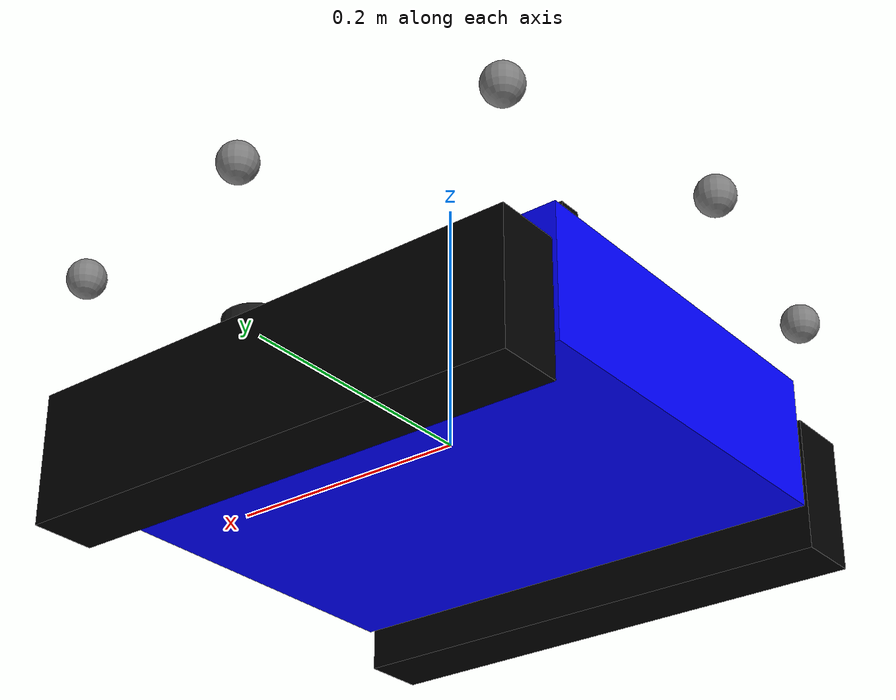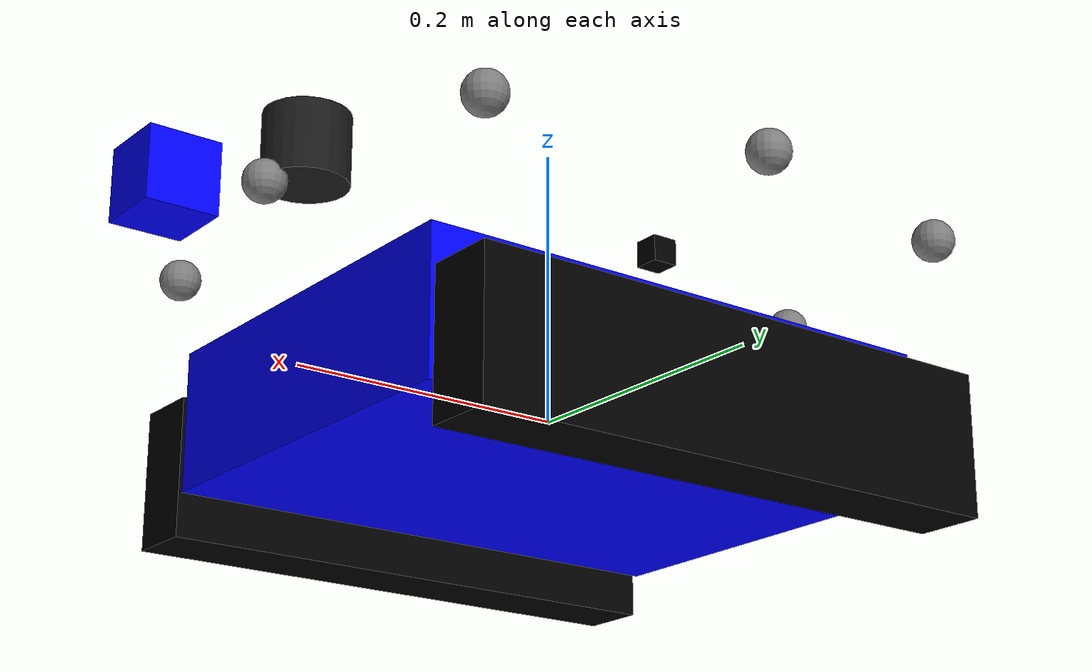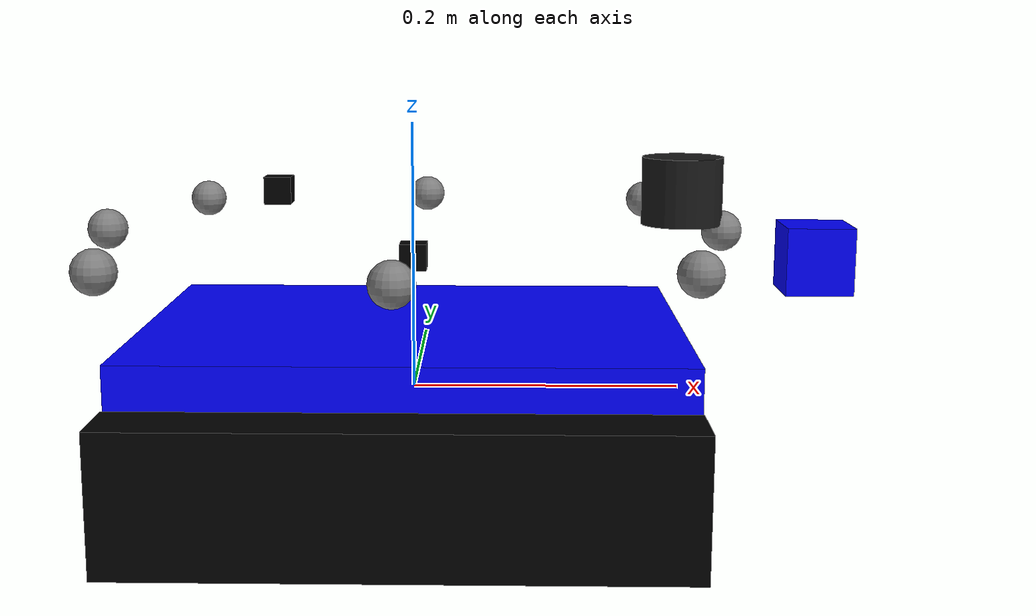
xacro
<?xml version="1.0"?>
<robot name="rover" xmlns:xacro="http://www.ros.org/wiki/xacro">

  <material name="grey"><color rgba="0.5 0.5 0.5 1.0"/></material>
  <material name="black"><color rgba="0.0 0.0 0.0 1.0"/></material>
  <material name="blue"><color rgba="0.0 0.0 1.0 1.0"/></material>
  <material name="lidar_mat"><color rgba="0.1 0.1 0.1 1.0"/></material>
  <material name="cam_mat"><color rgba="0.5 0.5 0.5 1.0"/></material>

  <link name="base_footprint"/>
  <joint name="base_joint" type="fixed">
    <parent link="base_footprint"/>
    <child link="base_link"/>
  </joint>

  <link name="base_link">
    <inertial>
      <mass value="5.0"/>
      <inertia ixx="0.1" ixy="0" ixz="0" iyy="0.1" iyz="0" izz="0.1"/>
    </inertial>
    <visual>
      <geometry><box size="0.4 0.3 0.1"/></geometry>
      <material name="blue"/>
    </visual>
    <collision>
      <geometry><box size="0.4 0.3 0.1"/></geometry>
    </collision>
  </link>

  <link name="left_track_vis">
    <visual><geometry><box size="0.4 0.05 0.1"/></geometry><material name="black"/></visual>
  </link>
  <joint name="lt_joint" type="fixed"><parent link="base_link"/><child link="left_track_vis"/><origin xyz="0 0.18 -0.03"/></joint>

  <link name="right_track_vis">
    <visual><geometry><box size="0.4 0.05 0.1"/></geometry><material name="black"/></visual>
  </link>
  <joint name="rt_joint" type="fixed"><parent link="base_link"/><child link="right_track_vis"/><origin xyz="0 -0.18 -0.03"/></joint>

  <link name="left_wheel"><collision><geometry><cylinder radius="0.05" length="0.03"/></geometry></collision><inertial><mass value="0.2"/><inertia ixx="0.01" ixy="0" ixz="0" iyy="0.01" iyz="0" izz="0.01"/></inertial></link>
  <joint name="left_wheel_joint" type="continuous"><parent link="base_link"/><child link="left_wheel"/><origin xyz="0 0.17 -0.05" rpy="1.5708 0 0"/><axis xyz="0 0 -1"/></joint>

  <link name="right_wheel"><collision><geometry><cylinder radius="0.05" length="0.03"/></geometry></collision><inertial><mass value="0.2"/><inertia ixx="0.01" ixy="0" ixz="0" iyy="0.01" iyz="0" izz="0.01"/></inertial></link>
  <joint name="right_wheel_joint" type="continuous"><parent link="base_link"/><child link="right_wheel"/><origin xyz="0 -0.17 -0.05" rpy="1.5708 0 0"/><axis xyz="0 0 -1"/></joint>

  <link name="f_caster"><collision><geometry><sphere radius="0.05"/></geometry></collision><inertial><mass value="0.01"/><inertia ixx="0.001" ixy="0" ixz="0" iyy="0.001" iyz="0" izz="0.001"/></inertial></link>
  <joint name="f_caster_j" type="fixed"><parent link="base_link"/><child link="f_caster"/><origin xyz="0.18 0 -0.05"/></joint>
  <gazebo reference="f_caster"><mu1>0.0</mu1><mu2>0.0</mu2></gazebo>

  <link name="r_caster"><collision><geometry><sphere radius="0.05"/></geometry></collision><inertial><mass value="0.01"/><inertia ixx="0.001" ixy="0" ixz="0" iyy="0.001" iyz="0" izz="0.001"/></inertial></link>
  <joint name="r_caster_j" type="fixed"><parent link="base_link"/><child link="r_caster"/><origin xyz="-0.18 0 -0.05"/></joint>
  <gazebo reference="r_caster"><mu1>0.0</mu1><mu2>0.0</mu2></gazebo>

  <xacro:macro name="add_ultrasonic" params="name xyz rpy topic">
    <link name="${name}_link">
      <visual>
        <geometry><sphere radius="0.015"/></geometry>
        <material name="grey"/>
      </visual>
    </link>

    <joint name="${name}_joint" type="fixed">
      <origin xyz="${xyz}" rpy="${rpy}"/>
      <parent link="base_link"/>
      <child link="${name}_link"/>
    </joint>

    <gazebo reference="${name}_link">
      <sensor name="${name}" type="ray">
        <always_on>true</always_on>
        <update_rate>10</update_rate>
        <visualize>true</visualize>
        <ray>
          <scan>
            <horizontal>
              <samples>10</samples>
              <resolution>1</resolution>
              <min_angle>-0.3927</min_angle>
              <max_angle>0.3927</max_angle>
            </horizontal>
          </scan>
          <range>
            <min>0.02</min>
            <max>2.0</max>
            <resolution>0.01</resolution>
          </range>
        </ray>
        <plugin name="${name}_plugin" filename="libgazebo_ros_ray_sensor.so">
          <ros>
            <remapping>~/out:=${topic}</remapping>
          </ros>
          <output_type>sensor_msgs/LaserScan</output_type>
          <frame_name>${name}_link</frame_name>
        </plugin>
      </sensor>
    </gazebo>
  </xacro:macro>

  <xacro:add_ultrasonic name="us0_front"       xyz="0.23 0 0.12"     rpy="0 0 0"        topic="/us_sensor/front"/>
  <xacro:add_ultrasonic name="us1_front_left"  xyz="0.19 0.19 0.12"  rpy="0 0 0.7854"   topic="/us_sensor/front_left"/>
  <xacro:add_ultrasonic name="us2_left"        xyz="0 0.23 0.12"     rpy="0 0 1.5708"   topic="/us_sensor/left"/>
  <xacro:add_ultrasonic name="us3_rear_left"   xyz="-0.19 0.19 0.12" rpy="0 0 2.3562"   topic="/us_sensor/rear_left"/>
  <xacro:add_ultrasonic name="us4_rear"        xyz="-0.23 0 0.12"    rpy="0 0 3.14159"  topic="/us_sensor/rear"/>
  <xacro:add_ultrasonic name="us5_rear_right"  xyz="-0.19 -0.19 0.12" rpy="0 0 -2.3562" topic="/us_sensor/rear_right"/>
  <xacro:add_ultrasonic name="us6_right"       xyz="0 -0.23 0.12"    rpy="0 0 -1.5708"  topic="/us_sensor/right"/>
  <xacro:add_ultrasonic name="us7_front_right" xyz="0.19 -0.19 0.12" rpy="0 0 -0.7854"  topic="/us_sensor/front_right"/>

  <link name="lidar_link">
    <visual><geometry><cylinder radius="0.03" length="0.05"/></geometry><material name="lidar_mat"/></visual>
    <inertial><mass value="0.1"/><inertia ixx="0.001" ixy="0" ixz="0" iyy="0.001" iyz="0" izz="0.001"/></inertial>
  </link>
  <joint name="lidar_joint" type="fixed"><parent link="base_link"/><child link="lidar_link"/><origin xyz="0.2 0 0.15"/></joint>

  <gazebo reference="lidar_link">
    <sensor name="lidar" type="ray">
      <always_on>true</always_on>
      <update_rate>20</update_rate>
      <visualize>true</visualize>
      <ray>
        <scan>
          <horizontal>
            <samples>360</samples>
            <resolution>1</resolution>
            <min_angle>-3.14159</min_angle>
            <max_angle>3.14159</max_angle>
          </horizontal>
        </scan>
        <range>
          <min>0.12</min>
          <max>12.0</max>
        </range>
      </ray>
      <plugin name="lidar_plugin" filename="libgazebo_ros_ray_sensor.so">
        <ros>
          <remapping>~/out:=/scan</remapping>
        </ros>
        <output_type>sensor_msgs/LaserScan</output_type>
        <frame_name>lidar_link</frame_name>
      </plugin>
    </sensor>
  </gazebo>

  <link name="camera_link">
    <visual>
      <geometry>
        <box size="0.05 0.05 0.05"/>
      </geometry>
      <material name="blue"/>
    </visual>
  </link>

  <joint name="camera_joint" type="fixed">
    <parent link="base_link"/>
    <child link="camera_link"/>
    <origin xyz="0.3 0 0.1" rpy="0 0 0"/>
  </joint>

  <link name="camera_optical_link"/>
  <joint name="camera_optical_joint" type="fixed">
    <parent link="camera_link"/>
    <child link="camera_optical_link"/>
    <origin xyz="0 0 0" rpy="-1.57 0 -1.57"/>
  </joint>

  <gazebo reference="camera_link">
    <sensor name="camera" type="depth">
      <visualize>true</visualize>
      <update_rate>30.0</update_rate>
      <camera name="head">
        <horizontal_fov>1.047198</horizontal_fov>
        <image>
          <width>640</width>
          <height>480</height>
          <format>R8G8B8</format>
        </image>
        <clip>
          <near>0.05</near>
          <far>8.0</far>
        </clip>
      </camera>
      <plugin name="camera_controller" filename="libgazebo_ros_camera.so">
        <frame_name>camera_optical_link</frame_name>
        <min_depth>0.1</min_depth>
        <max_depth>100.0</max_depth>
      </plugin>
    </sensor>
  </gazebo>

  <link name="imu_link">
    <visual>
      <geometry>
        <box size="0.02 0.02 0.02"/>
      </geometry>
      <material name="black"/>
    </visual>
  </link>

  <joint name="imu_joint" type="fixed">
    <parent link="base_link"/>
    <child link="imu_link"/>
    <origin xyz="0 0 0.1" rpy="0 0 0"/>
  </joint>

  <gazebo reference="imu_link">
  <sensor name="imu_sensor" type="imu">
    <always_on>true</always_on>
    <update_rate>100</update_rate>
    <visualize>true</visualize>
    <plugin filename="libgazebo_ros_imu_sensor.so" name="imu_plugin">
      <ros>
        <namespace>/</namespace>
        <remapping>~/out:=/imu/data</remapping>
      </ros>
      <initial_orientation_as_reference>false</initial_orientation_as_reference>
      <frame_name>imu_link</frame_name>
      <update_rate>100.0</update_rate>
    </plugin>
  </sensor>
</gazebo>

  <link name="gps_link">
    <visual>
      <geometry>
        <box size="0.02 0.02 0.02"/>
      </geometry>
      <material name="black"/>
    </visual>
  </link>

  <joint name="gps_joint" type="fixed">
    <parent link="base_link"/>
    <child link="gps_link"/>
    <origin xyz="-0.1 0 0.15" rpy="0 0 0"/>
  </joint>

  <gazebo reference="gps_link">
    <sensor name="gps_sensor" type="gps">
      <always_on>true</always_on>
      <update_rate>1.0</update_rate>
      <plugin name="gps_controller" filename="libgazebo_ros_gps_sensor.so">
        <ros>
          <remapping>~/out:=/gps/fix</remapping>
        </ros>
        <frame_name>gps_link</frame_name>
      </plugin>
    </sensor>
  </gazebo>

  <gazebo>
    <plugin name="diff_drive" filename="libgazebo_ros_diff_drive.so">

      <left_joint>left_wheel_joint</left_joint>
      <right_joint>right_wheel_joint</right_joint>
      <wheel_separation>0.34</wheel_separation>
      <wheel_diameter>0.10</wheel_diameter>

      <max_wheel_torque>200</max_wheel_torque>
      <max_wheel_acceleration>10.0</max_wheel_acceleration>

      <odometry_frame>odom</odometry_frame>
      <robot_base_frame>base_footprint</robot_base_frame>

      <publish_odom>true</publish_odom>
      <publish_odom_tf>true</publish_odom_tf>
      <publish_wheel_tf>true</publish_wheel_tf>

    </plugin>
  </gazebo>

</robot>
